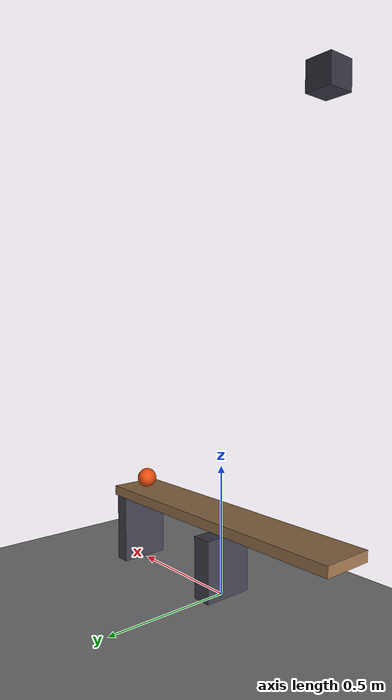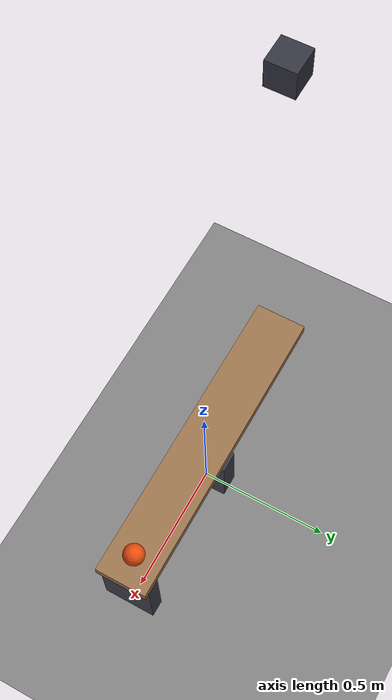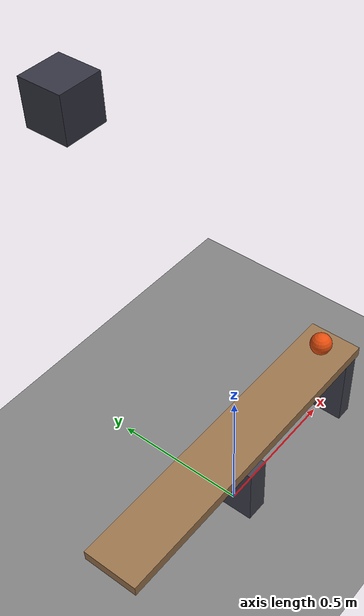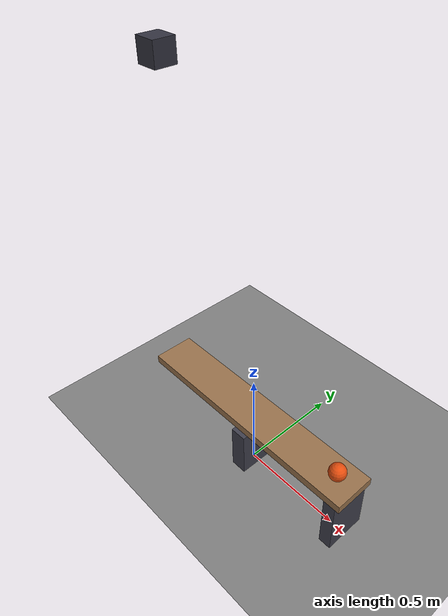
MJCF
<mujoco model="seesaw_throw">
  <compiler angle="radian"/>
  <option timestep="0.002"/>
  <worldbody>
    <geom name="floor" type="plane" size="8 8 0.1" friction="0.8 0.005 0.002"/>
    <body name="pivot">
    </body>
    <body name="fulcrum">
      <geom name="fulcrum" type="box" pos="0 0 0.12" size="0.04 0.1 0.12" rgba="0.25 0.25 0.3 1"/>
    </body>
    <body name="rest post">
      <geom name="rest post" type="box" pos="0.55 0 0.14" size="0.03 0.1 0.14" rgba="0.25 0.25 0.3 1"/>
    </body>
    <body name="seesaw" pos="0 0 0.3">
      <joint name="seesaw_hinge" type="hinge" pos="0 0 0" axis="0 1 0" limited="true" range="-0.610865 0.610865"/>
      <geom name="seesaw" type="box" pos="0 0 0" size="0.6 0.1 0.02" mass="0.5" friction="0.8 0.005 0.0001" rgba="0.6 0.45 0.3 1"/>
    </body>
    <body name="ball" pos="0.5 0 0.36">
      <freejoint/>
      <geom name="ball" type="sphere" pos="0 0 0" size="0.04" mass="0.1" condim="6" friction="0.8 0.01 0.004" rgba="0.9 0.3 0.05 1"/>
    </body>
    <body name="weight" pos="-0.5 0 1.8">
      <freejoint/>
      <geom name="weight" type="box" pos="0 0 0" size="0.05 0.05 0.05" mass="1" friction="0.8 0.005 0.0001" solref="0.01 1" rgba="0.2 0.2 0.25 1"/>
    </body>
  </worldbody>
  <keyframe>
    <key name="start" qpos="0 0.5 0 0.36 1 0 0 0 -0.5 0 1.8 1 0 0 0" qvel="0 0 0 0 0 0 0 0 0 0 0 0 0"/>
  </keyframe>
</mujoco>
